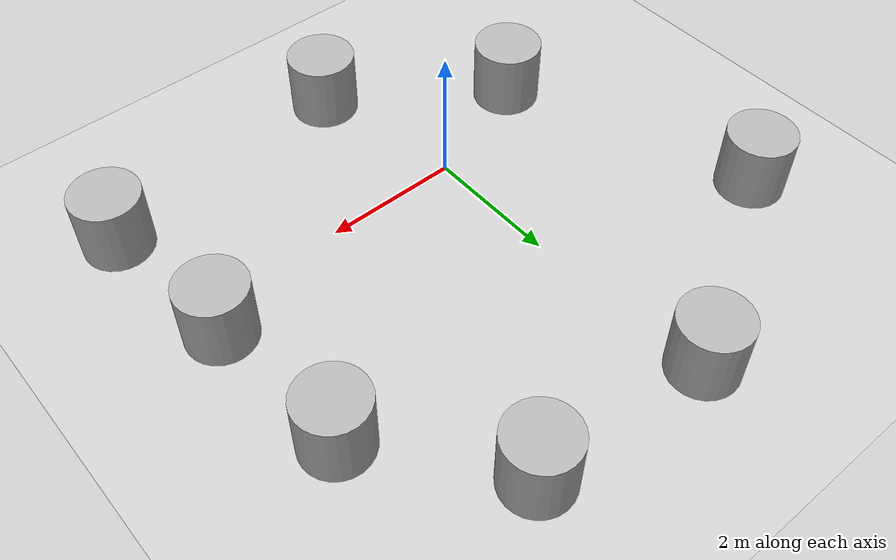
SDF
<?xml version="1.0"?>
<sdf version="1.6">
  <world name="default">
    <plugin
      filename="gz-sim-physics-system"
      name="gz::sim::systems::Physics">
    </plugin>
    <plugin
      filename="gz-sim-user-commands-system"
      name="gz::sim::systems::UserCommands">
    </plugin>
    <plugin
      filename="gz-sim-scene-broadcaster-system"
      name="gz::sim::systems::SceneBroadcaster">
    </plugin>
    <plugin
      filename="gz-sim-sensors-system"
      name="gz::sim::systems::Sensors">
      <render_engine>ogre2</render_engine>
    </plugin>
    <plugin
      filename="gz-sim-imu-system"
      name="gz::sim::systems::Imu">
    </plugin>

    <model name='ground_plane'>
      <static>1</static>
      <link name='link'>
        <collision name='collision'>
          <geometry>
            <plane>
              <normal>0 0 1</normal>
              <size>100 100</size>
            </plane>
          </geometry>
          <surface>
            <contact>
              <collide_bitmask>65535</collide_bitmask>
            </contact>
            <friction>
              <ode>
                <mu>1000</mu>
                <mu2>1000</mu2>
              </ode>
              <torsional>
                <ode/>
              </torsional>
            </friction>
            <bounce/>
          </surface>
          <max_contacts>10</max_contacts>
        </collision>
        <visual name='visual'>
          <cast_shadows>0</cast_shadows>
          <geometry>
            <plane>
              <normal>0 0 1</normal>
              <size>100 100</size>
            </plane>
          </geometry>
          <material>
            <script>
              <uri>file://media/materials/scripts/gazebo.material</uri>
              <name>Gazebo/Grey</name>
            </script>
          </material>
        </visual>
        <self_collide>0</self_collide>
        <enable_wind>0</enable_wind>
        <kinematic>0</kinematic>
      </link>
    </model>

  <model name='cylinder'>
      <pose>2.497807334470413 4.5850080956436319 0.49999942638036005 3.9808047437902886e-19 -2.7591377400994268e-19 -8.580627868896802e-21</pose>
      <link name='cylinder_link'>
        <inertial>
          <inertia>
            <ixx>0.14580000000000001</ixx>
            <ixy>0</ixy>
            <ixz>0</ixz>
            <iyy>0.14580000000000001</iyy>
            <iyz>0</iyz>
            <izz>0.125</izz>
          </inertia>
          <mass>1</mass>
          <pose>0 0 0 0 0 0</pose>
        </inertial>
        <collision name='cylinder_collision'>
          <geometry>
            <cylinder>
              <radius>0.5</radius>
              <length>1</length>
            </cylinder>
          </geometry>
          <surface>
            <friction>
              <ode/>
            </friction>
            <bounce/>
            <contact/>
          </surface>
        </collision>
        <visual name='cylinder_visual'>
          <geometry>
            <cylinder>
              <radius>0.5</radius>
              <length>1</length>
            </cylinder>
          </geometry>
          <material>
            <ambient>0.300000012 0.300000012 0.300000012 1</ambient>
            <diffuse>0.699999988 0.699999988 0.699999988 1</diffuse>
            <specular>1 1 1 1</specular>
          </material>
        </visual>
        <pose>0 0 0 0 0 0</pose>
        <enable_wind>false</enable_wind>
      </link>
      <static>false</static>
      <self_collide>false</self_collide>
    </model>
    <model name='cylinder_0'>
      <pose>3.971586656321433 2.7126193404076222 0.49999942638036005 4.1242473602438027e-19 2.009872934664976e-19 -1.1983678015071153e-20</pose>
      <link name='cylinder_link'>
        <inertial>
          <inertia>
            <ixx>0.14580000000000001</ixx>
            <ixy>0</ixy>
            <ixz>0</ixz>
            <iyy>0.14580000000000001</iyy>
            <iyz>0</iyz>
            <izz>0.125</izz>
          </inertia>
          <mass>1</mass>
          <pose>0 0 0 0 0 0</pose>
        </inertial>
        <collision name='cylinder_collision'>
          <geometry>
            <cylinder>
              <radius>0.5</radius>
              <length>1</length>
            </cylinder>
          </geometry>
          <surface>
            <friction>
              <ode/>
            </friction>
            <bounce/>
            <contact/>
          </surface>
        </collision>
        <visual name='cylinder_visual'>
          <geometry>
            <cylinder>
              <radius>0.5</radius>
              <length>1</length>
            </cylinder>
          </geometry>
          <material>
            <ambient>0.300000012 0.300000012 0.300000012 1</ambient>
            <diffuse>0.699999988 0.699999988 0.699999988 1</diffuse>
            <specular>1 1 1 1</specular>
          </material>
        </visual>
        <pose>0 0 0 0 0 0</pose>
        <enable_wind>false</enable_wind>
      </link>
      <static>false</static>
      <self_collide>false</self_collide>
    </model>
    <model name='cylinder_1'>
      <pose>4.1355418709731078 0.45991521554025105 0.49999942638036005 5.6780910064698313e-20 -2.1487577624771192e-19 6.621946302534404e-21</pose>
      <link name='cylinder_link'>
        <inertial>
          <inertia>
            <ixx>0.14580000000000001</ixx>
            <ixy>0</ixy>
            <ixz>0</ixz>
            <iyy>0.14580000000000001</iyy>
            <iyz>0</iyz>
            <izz>0.125</izz>
          </inertia>
          <mass>1</mass>
          <pose>0 0 0 0 0 0</pose>
        </inertial>
        <collision name='cylinder_collision'>
          <geometry>
            <cylinder>
              <radius>0.5</radius>
              <length>1</length>
            </cylinder>
          </geometry>
          <surface>
            <friction>
              <ode/>
            </friction>
            <bounce/>
            <contact/>
          </surface>
        </collision>
        <visual name='cylinder_visual'>
          <geometry>
            <cylinder>
              <radius>0.5</radius>
              <length>1</length>
            </cylinder>
          </geometry>
          <material>
            <ambient>0.300000012 0.300000012 0.300000012 1</ambient>
            <diffuse>0.699999988 0.699999988 0.699999988 1</diffuse>
            <specular>1 1 1 1</specular>
          </material>
        </visual>
        <pose>0 0 0 0 0 0</pose>
        <enable_wind>false</enable_wind>
      </link>
      <static>false</static>
      <self_collide>false</self_collide>
    </model>
    <model name='cylinder_2'>
      <pose>4.3811202876471187 -1.7593607448164861 0.49999942638036005 5.9585223819860475e-20 3.0114956888787398e-19 8.4680560043789645e-22</pose>
      <link name='cylinder_link'>
        <inertial>
          <inertia>
            <ixx>0.14580000000000001</ixx>
            <ixy>0</ixy>
            <ixz>0</ixz>
            <iyy>0.14580000000000001</iyy>
            <iyz>0</iyz>
            <izz>0.125</izz>
          </inertia>
          <mass>1</mass>
          <pose>0 0 0 0 0 0</pose>
        </inertial>
        <collision name='cylinder_collision'>
          <geometry>
            <cylinder>
              <radius>0.5</radius>
              <length>1</length>
            </cylinder>
          </geometry>
          <surface>
            <friction>
              <ode/>
            </friction>
            <bounce/>
            <contact/>
          </surface>
        </collision>
        <visual name='cylinder_visual'>
          <geometry>
            <cylinder>
              <radius>0.5</radius>
              <length>1</length>
            </cylinder>
          </geometry>
          <material>
            <ambient>0.300000012 0.300000012 0.300000012 1</ambient>
            <diffuse>0.699999988 0.699999988 0.699999988 1</diffuse>
            <specular>1 1 1 1</specular>
          </material>
        </visual>
        <pose>0 0 0 0 0 0</pose>
        <enable_wind>false</enable_wind>
      </link>
      <static>false</static>
      <self_collide>false</self_collide>
    </model>
    <model name='cylinder_3'>
      <pose>-0.1722116790047874 4.7759300598167167 0.49999942638036005 -1.5779186687131965e-19 2.5288553385512763e-19 2.5189690420320574e-20</pose>
      <link name='cylinder_link'>
        <inertial>
          <inertia>
            <ixx>0.14580000000000001</ixx>
            <ixy>0</ixy>
            <ixz>0</ixz>
            <iyy>0.14580000000000001</iyy>
            <iyz>0</iyz>
            <izz>0.125</izz>
          </inertia>
          <mass>1</mass>
          <pose>0 0 0 0 0 0</pose>
        </inertial>
        <collision name='cylinder_collision'>
          <geometry>
            <cylinder>
              <radius>0.5</radius>
              <length>1</length>
            </cylinder>
          </geometry>
          <surface>
            <friction>
              <ode/>
            </friction>
            <bounce/>
            <contact/>
          </surface>
        </collision>
        <visual name='cylinder_visual'>
          <geometry>
            <cylinder>
              <radius>0.5</radius>
              <length>1</length>
            </cylinder>
          </geometry>
          <material>
            <ambient>0.300000012 0.300000012 0.300000012 1</ambient>
            <diffuse>0.699999988 0.699999988 0.699999988 1</diffuse>
            <specular>1 1 1 1</specular>
          </material>
        </visual>
        <pose>0 0 0 0 0 0</pose>
        <enable_wind>false</enable_wind>
      </link>
      <static>false</static>
      <self_collide>false</self_collide>
    </model>
    <model name='cylinder_4'>
      <pose>-1.8026257591422823 -0.65660335839948303 0.49999942638036005 2.6910462335926897e-19 2.5787854909670078e-19 4.9849888016206371e-21</pose>
      <link name='cylinder_link'>
        <inertial>
          <inertia>
            <ixx>0.14580000000000001</ixx>
            <ixy>0</ixy>
            <ixz>0</ixz>
            <iyy>0.14580000000000001</iyy>
            <iyz>0</iyz>
            <izz>0.125</izz>
          </inertia>
          <mass>1</mass>
          <pose>0 0 0 0 0 0</pose>
        </inertial>
        <collision name='cylinder_collision'>
          <geometry>
            <cylinder>
              <radius>0.5</radius>
              <length>1</length>
            </cylinder>
          </geometry>
          <surface>
            <friction>
              <ode/>
            </friction>
            <bounce/>
            <contact/>
          </surface>
        </collision>
        <visual name='cylinder_visual'>
          <geometry>
            <cylinder>
              <radius>0.5</radius>
              <length>1</length>
            </cylinder>
          </geometry>
          <material>
            <ambient>0.300000012 0.300000012 0.300000012 1</ambient>
            <diffuse>0.699999988 0.699999988 0.699999988 1</diffuse>
            <specular>1 1 1 1</specular>
          </material>
        </visual>
        <pose>0 0 0 0 0 0</pose>
        <enable_wind>false</enable_wind>
      </link>
      <static>false</static>
      <self_collide>false</self_collide>
    </model>
    <model name='cylinder_5'>
      <pose>0.52520520689883732 -2.2512159788243444 0.49999942638036005 2.3266089094723198e-19 1.0867637754951233e-19 2.1296339483968561e-20</pose>
      <link name='cylinder_link'>
        <inertial>
          <inertia>
            <ixx>0.14580000000000001</ixx>
            <ixy>0</ixy>
            <ixz>0</ixz>
            <iyy>0.14580000000000001</iyy>
            <iyz>0</iyz>
            <izz>0.125</izz>
          </inertia>
          <mass>1</mass>
          <pose>0 0 0 0 0 0</pose>
        </inertial>
        <collision name='cylinder_collision'>
          <geometry>
            <cylinder>
              <radius>0.5</radius>
              <length>1</length>
            </cylinder>
          </geometry>
          <surface>
            <friction>
              <ode/>
            </friction>
            <bounce/>
            <contact/>
          </surface>
        </collision>
        <visual name='cylinder_visual'>
          <geometry>
            <cylinder>
              <radius>0.5</radius>
              <length>1</length>
            </cylinder>
          </geometry>
          <material>
            <ambient>0.300000012 0.300000012 0.300000012 1</ambient>
            <diffuse>0.699999988 0.699999988 0.699999988 1</diffuse>
            <specular>1 1 1 1</specular>
          </material>
        </visual>
        <pose>0 0 0 0 0 0</pose>
        <enable_wind>false</enable_wind>
      </link>
      <static>false</static>
      <self_collide>false</self_collide>
    </model>
    <model name='cylinder_6'>
      <pose>-3.158208391588877 3.0827897124240664 0.49999942638036005 -1.0155141001500117e-19 -4.2610052450143234e-19 -6.4736852533976721e-21</pose>
      <link name='cylinder_link'>
        <inertial>
          <inertia>
            <ixx>0.14580000000000001</ixx>
            <ixy>0</ixy>
            <ixz>0</ixz>
            <iyy>0.14580000000000001</iyy>
            <iyz>0</iyz>
            <izz>0.125</izz>
          </inertia>
          <mass>1</mass>
          <pose>0 0 0 0 0 0</pose>
        </inertial>
        <collision name='cylinder_collision'>
          <geometry>
            <cylinder>
              <radius>0.5</radius>
              <length>1</length>
            </cylinder>
          </geometry>
          <surface>
            <friction>
              <ode/>
            </friction>
            <bounce/>
            <contact/>
          </surface>
        </collision>
        <visual name='cylinder_visual'>
          <geometry>
            <cylinder>
              <radius>0.5</radius>
              <length>1</length>
            </cylinder>
          </geometry>
          <material>
            <ambient>0.300000012 0.300000012 0.300000012 1</ambient>
            <diffuse>0.699999988 0.699999988 0.699999988 1</diffuse>
            <specular>1 1 1 1</specular>
          </material>
        </visual>
        <pose>0 0 0 0 0 0</pose>
        <enable_wind>false</enable_wind>
      </link>
      <static>false</static>
      <self_collide>false</self_collide>
    </model>

    <include>
      <uri>
        https://fuel.gazebosim.org/1.0/OpenRobotics/models/Sun
      </uri>
    </include>

    <scene>
      <shadows>false</shadows>
    </scene>

    <gui fullscreen='0'>
      <camera name='user_camera'>
        <pose frame=''>0.319654 -0.235002 9.29441 0 1.5138 0.009599</pose>
        <view_controller>orbit</view_controller>
        <projection_type>perspective</projection_type>
      </camera>
    </gui>

    <physics type='ode'>
      <max_step_size>0.001</max_step_size>
      <real_time_factor>1</real_time_factor>
      <real_time_update_rate>1000</real_time_update_rate>
    </physics>

  </world>
</sdf>
